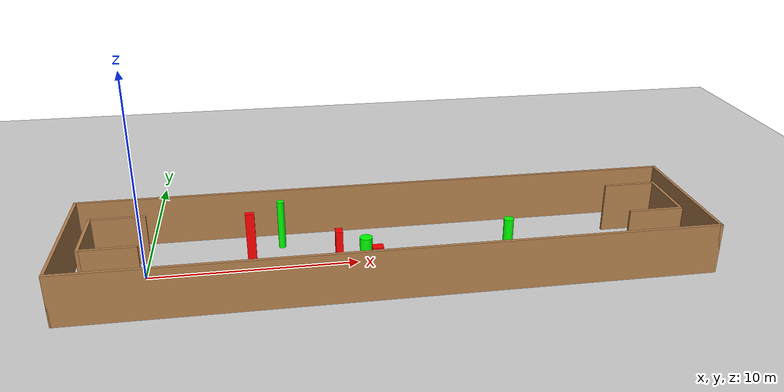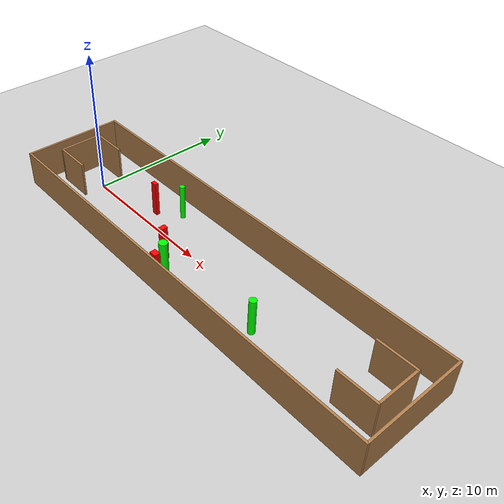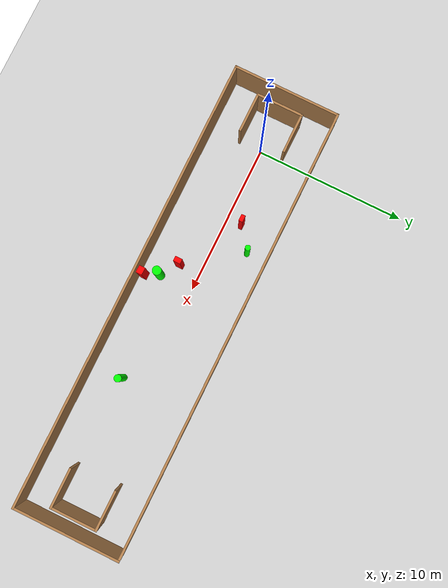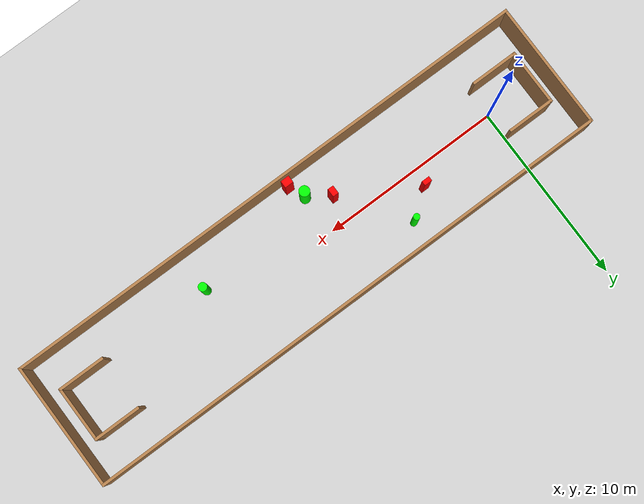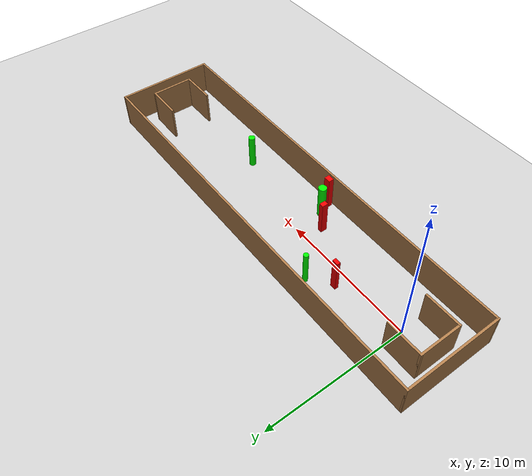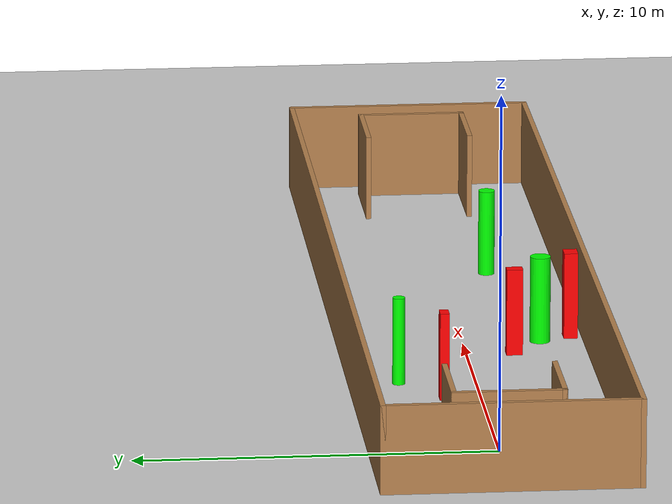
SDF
<sdf version="1.7">
 <world name="default">
  <light name="sun" type="directional">
   <pose>0 0 10 0 -0 0</pose>
   <diffuse>0.8 0.8 0.8 1</diffuse>
   <specular>0.2 0.2 0.2 1</specular>
   <attenuation>
    <range>1000</range>
    <constant>0.9</constant>
    <linear>0.01</linear>
    <quadratic>0.001</quadratic>
   </attenuation>
   <direction>-0.5 0.1 -0.9</direction>
   <spot><inner_angle>0</inner_angle><outer_angle>0</outer_angle><falloff>0</falloff></spot>
  </light>
  <model name="ground_plane">
   <static>1</static>
   <link name="link">
    <collision name="collision">
     <geometry><plane><normal>0 0 1</normal><size>100 100</size></plane></geometry>
     <surface>
      <contact><collide_bitmask>65535</collide_bitmask></contact>
      <friction><ode><mu>100</mu><mu2>50</mu2></ode></friction>
     </surface>
    </collision>
    <visual name="visual">
     <cast_shadows>0</cast_shadows>
     <geometry><plane><normal>0 0 1</normal><size>100 100</size></plane></geometry>
     <material>
      <script><uri>file://media/materials/scripts/gazebo.material</uri><name>Gazebo/Grey</name></script>
     </material>
    </visual>
   </link>
  </model>
  <gravity>0 0 -9.8</gravity>
  <magnetic_field>6e-06 2.3e-05 -4.2e-05</magnetic_field>
  <atmosphere type="adiabatic"/>
  <physics type="ode">
   <max_step_size>0.001</max_step_size>
   <real_time_factor>1</real_time_factor>
   <real_time_update_rate>1000</real_time_update_rate>
  </physics>
  <scene><ambient>0.4 0.4 0.4 1</ambient><background>0.7 0.7 0.7 1</background><shadows>1</shadows></scene>
  <spherical_coordinates>
   <surface_model>EARTH_WGS84</surface_model>
   <latitude_deg>0</latitude_deg>
   <longitude_deg>0</longitude_deg>
   <elevation>0</elevation>
   <heading_deg>0</heading_deg>
  </spherical_coordinates>
  <model name="my_base_walls">
   <link name="Wall_0">
    <collision name="Wall_0_Collision">
     <geometry><box><size>7.15 0.15 2.5</size></box></geometry>
     <pose>0 0 1.25 0 -0 0</pose>
    </collision>
    <visual name="Wall_0_Visual">
     <pose>0 0 1.25 0 -0 0</pose>
     <geometry><box><size>7.15 0.15 2.5</size></box></geometry>
     <material>
      <script><uri>file://media/materials/scripts/gazebo.material</uri><name>Gazebo/Wood</name></script>
      <ambient>1 1 1 1</ambient>
     </material>
     <meta><layer>0</layer></meta>
    </visual>
    <pose>-15 0 0 0 -0 1.5708</pose>
   </link>
   <link name="Wall_10">
    <collision name="Wall_10_Collision">
     <geometry><box><size>2.65 0.15 2.5</size></box></geometry>
     <pose>0 0 1.25 0 -0 0</pose>
    </collision>
    <visual name="Wall_10_Visual">
     <pose>0 0 1.25 0 -0 0</pose>
     <geometry><box><size>2.65 0.15 2.5</size></box></geometry>
     <material>
      <script><uri>file://media/materials/scripts/gazebo.material</uri><name>Gazebo/Wood</name></script>
      <ambient>1 1 1 1</ambient>
     </material>
     <meta><layer>0</layer></meta>
    </visual>
    <pose>-12.75 -1.5 0 0 -0 0</pose>
   </link>
   <link name="Wall_12">
    <collision name="Wall_12_Collision">
     <geometry><box><size>2.65 0.15 2.5</size></box></geometry>
     <pose>0 0 1.25 0 -0 0</pose>
    </collision>
    <visual name="Wall_12_Visual">
     <pose>0 0 1.25 0 -0 0</pose>
     <geometry><box><size>2.65 0.15 2.5</size></box></geometry>
     <material>
      <script><uri>file://media/materials/scripts/gazebo.material</uri><name>Gazebo/Wood</name></script>
      <ambient>1 1 1 1</ambient>
     </material>
     <meta><layer>0</layer></meta>
    </visual>
    <pose>-12.75 1.5 0 0 -0 0</pose>
   </link>
   <link name="Wall_14">
    <collision name="Wall_14_Collision">
     <geometry><box><size>3.15 0.15 2.5</size></box></geometry>
     <pose>0 0 1.25 0 -0 0</pose>
    </collision>
    <visual name="Wall_14_Visual">
     <pose>0 0 1.25 0 -0 0</pose>
     <geometry><box><size>3.15 0.15 2.5</size></box></geometry>
     <material>
      <script><uri>file://media/materials/scripts/gazebo.material</uri><name>Gazebo/Wood</name></script>
      <ambient>1 1 1 1</ambient>
     </material>
     <meta><layer>0</layer></meta>
    </visual>
    <pose>14 0 0 0 -0 -1.5708</pose>
   </link>
   <link name="Wall_15">
    <collision name="Wall_15_Collision">
     <geometry><box><size>2.65 0.15 2.5</size></box></geometry>
     <pose>0 0 1.25 0 -0 0</pose>
    </collision>
    <visual name="Wall_15_Visual">
     <pose>0 0 1.25 0 -0 0</pose>
     <geometry><box><size>2.65 0.15 2.5</size></box></geometry>
     <material>
      <script><uri>file://media/materials/scripts/gazebo.material</uri><name>Gazebo/Wood</name></script>
      <ambient>1 1 1 1</ambient>
     </material>
     <meta><layer>0</layer></meta>
    </visual>
    <pose>12.75 -1.5 0 0 -0 3.14159</pose>
   </link>
   <link name="Wall_17">
    <collision name="Wall_17_Collision">
     <geometry><box><size>2.65 0.15 2.5</size></box></geometry>
     <pose>0 0 1.25 0 -0 0</pose>
    </collision>
    <visual name="Wall_17_Visual">
     <pose>0 0 1.25 0 -0 0</pose>
     <geometry><box><size>2.65 0.15 2.5</size></box></geometry>
     <material>
      <script><uri>file://media/materials/scripts/gazebo.material</uri><name>Gazebo/Wood</name></script>
      <ambient>1 1 1 1</ambient>
     </material>
     <meta><layer>0</layer></meta>
    </visual>
    <pose>12.75 1.5 0 0 -0 3.14159</pose>
   </link>
   <link name="Wall_2">
    <collision name="Wall_2_Collision">
     <geometry><box><size>30.15 0.15 2.5</size></box></geometry>
     <pose>0 0 1.25 0 -0 0</pose>
    </collision>
    <visual name="Wall_2_Visual">
     <pose>0 0 1.25 0 -0 0</pose>
     <geometry><box><size>30.15 0.15 2.5</size></box></geometry>
     <material>
      <script><uri>file://media/materials/scripts/gazebo.material</uri><name>Gazebo/Wood</name></script>
      <ambient>1 1 1 1</ambient>
     </material>
     <meta><layer>0</layer></meta>
    </visual>
    <pose>-0 -3.5 0 0 -0 0</pose>
   </link>
   <link name="Wall_4">
    <collision name="Wall_4_Collision">
     <geometry><box><size>30.15 0.15 2.5</size></box></geometry>
     <pose>0 0 1.25 0 -0 0</pose>
    </collision>
    <visual name="Wall_4_Visual">
     <pose>0 0 1.25 0 -0 0</pose>
     <geometry><box><size>30.15 0.15 2.5</size></box></geometry>
     <material>
      <script><uri>file://media/materials/scripts/gazebo.material</uri><name>Gazebo/Wood</name></script>
      <ambient>1 1 1 1</ambient>
     </material>
     <meta><layer>0</layer></meta>
    </visual>
    <pose>-0 3.5 0 0 -0 0</pose>
   </link>
   <link name="Wall_6">
    <collision name="Wall_6_Collision">
     <geometry><box><size>7.15 0.15 2.5</size></box></geometry>
     <pose>0 0 1.25 0 -0 0</pose>
    </collision>
    <visual name="Wall_6_Visual">
     <pose>0 0 1.25 0 -0 0</pose>
     <geometry><box><size>7.15 0.15 2.5</size></box></geometry>
     <material>
      <script><uri>file://media/materials/scripts/gazebo.material</uri><name>Gazebo/Wood</name></script>
      <ambient>1 1 1 1</ambient>
     </material>
     <meta><layer>0</layer></meta>
    </visual>
    <pose>15 0 0 0 -0 -1.5708</pose>
   </link>
   <link name="Wall_9">
    <collision name="Wall_9_Collision">
     <geometry><box><size>3.15 0.15 2.5</size></box></geometry>
     <pose>0 0 1.25 0 -0 0</pose>
    </collision>
    <visual name="Wall_9_Visual">
     <pose>0 0 1.25 0 -0 0</pose>
     <geometry><box><size>3.15 0.15 2.5</size></box></geometry>
     <material>
      <script><uri>file://media/materials/scripts/gazebo.material</uri><name>Gazebo/Wood</name></script>
      <ambient>1 1 1 1</ambient>
     </material>
     <meta><layer>0</layer></meta>
    </visual>
    <pose>-14 0 0 0 -0 -1.5708</pose>
   </link>
   <static>1</static>
   <pose>11.5 0 0 0 -0 0</pose>
  </model>
  <model name="cylinder1">
   <static>1</static>
   <link name="link">
    <inertial>
     <mass>1</mass>
     <inertia><ixx>0.5</ixx><ixy>0</ixy><ixz>0</ixz><iyy>0.5</iyy><iyz>0</iyz><izz>1</izz></inertia>
    </inertial>
    <collision name="collision">
     <geometry><cylinder><radius>0.23517350957769578</radius><length>2.5</length></cylinder></geometry>
    </collision>
    <visual name="visual">
     <geometry><cylinder><radius>0.23517350957769578</radius><length>2.5</length></cylinder></geometry>
     <material>
      <ambient>0 1 0 1</ambient>
      <diffuse>0 1 0 1</diffuse>
      <specular>0.1 0.1 0.1 1</specular>
      <emissive>0 0 0 0</emissive>
     </material>
    </visual>
   </link>
   <pose>16.959466066387833 -1.39136320814075 1.25 0 0 0</pose>
  </model>
  <model name="cylinder2">
   <static>1</static>
   <link name="link">
    <inertial>
     <mass>1</mass>
     <inertia><ixx>0.5</ixx><ixy>0</ixy><ixz>0</ixz><iyy>0.5</iyy><iyz>0</iyz><izz>1</izz></inertia>
    </inertial>
    <collision name="collision">
     <geometry><cylinder><radius>0.17691105596544446</radius><length>2.5</length></cylinder></geometry>
    </collision>
    <visual name="visual">
     <geometry><cylinder><radius>0.17691105596544446</radius><length>2.5</length></cylinder></geometry>
     <material>
      <ambient>0 1 0 1</ambient>
      <diffuse>0 1 0 1</diffuse>
      <specular>0.1 0.1 0.1 1</specular>
      <emissive>0 0 0 0</emissive>
     </material>
    </visual>
   </link>
   <pose>6.408502712327797 2.147904526121306 1.25 0 0 0</pose>
  </model>
  <model name="cylinder3">
   <static>1</static>
   <link name="link">
    <inertial>
     <mass>1</mass>
     <inertia><ixx>0.5</ixx><ixy>0</ixy><ixz>0</ixz><iyy>0.5</iyy><iyz>0</iyz><izz>1</izz></inertia>
    </inertial>
    <collision name="collision">
     <geometry><cylinder><radius>0.29097740774832775</radius><length>2.5</length></cylinder></geometry>
    </collision>
    <visual name="visual">
     <geometry><cylinder><radius>0.29097740774832775</radius><length>2.5</length></cylinder></geometry>
     <material>
      <ambient>0 1 0 1</ambient>
      <diffuse>0 1 0 1</diffuse>
      <specular>0.1 0.1 0.1 1</specular>
      <emissive>0 0 0 0</emissive>
     </material>
    </visual>
   </link>
   <pose>10.099264640524368 -2.209971738733495 1.25 0 0 0</pose>
  </model>
  <model name="box1">
   <static>1</static>
   <link name="link">
    <inertial>
     <mass>1</mass>
     <inertia><ixx>0.083</ixx><ixy>0</ixy><ixz>0</ixz><iyy>0.083</iyy><iyz>0</iyz><izz>0.083</izz></inertia>
    </inertial>
    <collision name="collision">
     <geometry><box><size>0.3310621718972549 0.4593194356046183 2.5</size></box></geometry>
    </collision>
    <visual name="visual">
     <geometry><box><size>0.3310621718972549 0.4593194356046183 2.5</size></box></geometry>
     <material>
      <ambient>1 0 0 1</ambient>
      <diffuse>1 0 0 1</diffuse>
      <specular>0.1 0.1 0.1 1</specular>
      <emissive>0 0 0 0</emissive>
     </material>
    </visual>
    <sensor name="my_contact" type="contact">
     <contact><collision>box_collision</collision><topic>__default_topic__</topic></contact>
    </sensor>
   </link>
   <pose>8.958014096452004 -1.3540115036348408 1.25 0 0 0</pose>
  </model>
  <model name="box2">
   <static>1</static>
   <link name="link">
    <inertial>
     <mass>1</mass>
     <inertia><ixx>0.083</ixx><ixy>0</ixy><ixz>0</ixz><iyy>0.083</iyy><iyz>0</iyz><izz>0.083</izz></inertia>
    </inertial>
    <collision name="collision">
     <geometry><box><size>0.43333375497907056 0.25779963802648215 2.5</size></box></geometry>
    </collision>
    <visual name="visual">
     <geometry><box><size>0.43333375497907056 0.25779963802648215 2.5</size></box></geometry>
     <material>
      <ambient>1 0 0 1</ambient>
      <diffuse>1 0 0 1</diffuse>
      <specular>0.1 0.1 0.1 1</specular>
      <emissive>0 0 0 0</emissive>
     </material>
    </visual>
    <sensor name="my_contact" type="contact">
     <contact><collision>box_collision</collision><topic>__default_topic__</topic></contact>
    </sensor>
   </link>
   <pose>4.9208285865219725 1.025911402419526 1.25 0 0 0</pose>
  </model>
  <model name="box3">
   <static>1</static>
   <link name="link">
    <inertial>
     <mass>1</mass>
     <inertia><ixx>0.083</ixx><ixy>0</ixy><ixz>0</ixz><iyy>0.083</iyy><iyz>0</iyz><izz>0.083</izz></inertia>
    </inertial>
    <collision name="collision">
     <geometry><box><size>0.48753440589809866 0.3963858553188361 2.5</size></box></geometry>
    </collision>
    <visual name="visual">
     <geometry><box><size>0.48753440589809866 0.3963858553188361 2.5</size></box></geometry>
     <material>
      <ambient>1 0 0 1</ambient>
      <diffuse>1 0 0 1</diffuse>
      <specular>0.1 0.1 0.1 1</specular>
      <emissive>0 0 0 0</emissive>
     </material>
    </visual>
    <sensor name="my_contact" type="contact">
     <contact><collision>box_collision</collision><topic>__default_topic__</topic></contact>
    </sensor>
   </link>
   <pose>10.51147357575107 -3.1074437594284414 1.25 0 0 0</pose>
  </model>
 </world>
</sdf>
